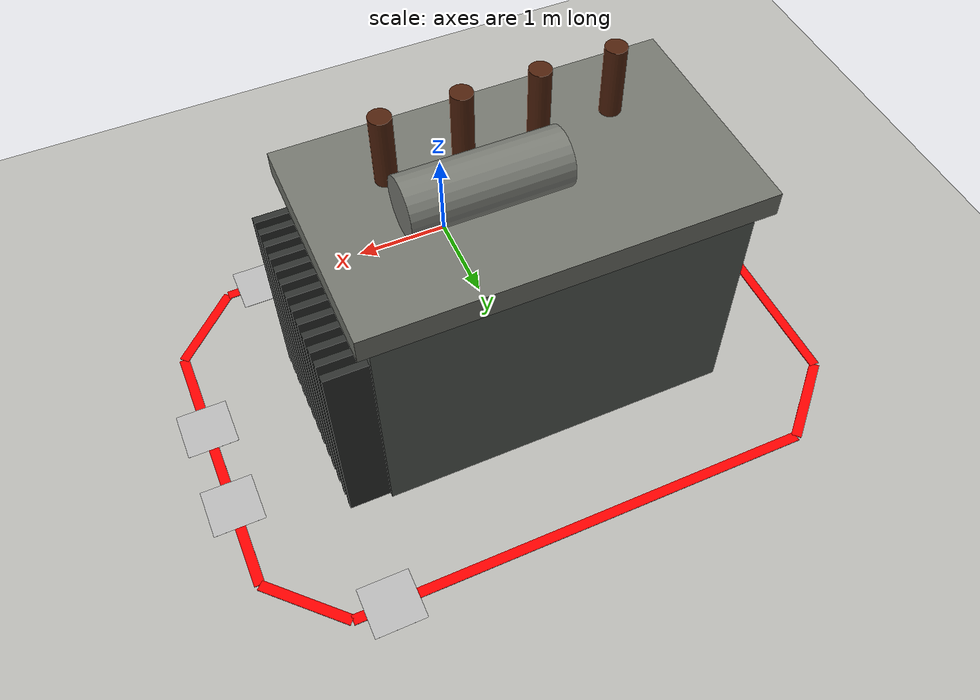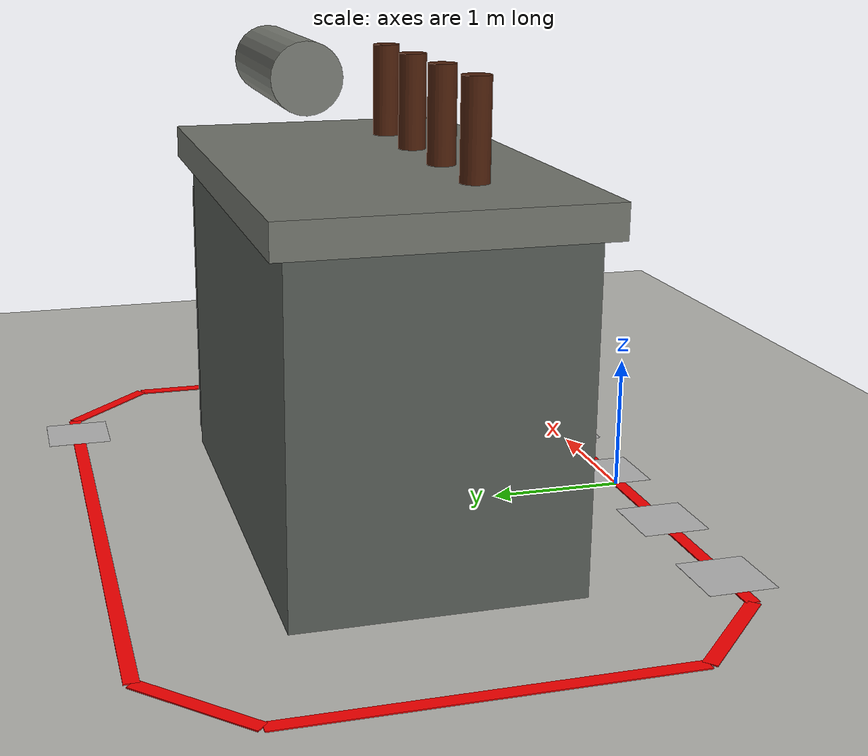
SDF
<sdf version="1.7">
 <world name="transformer_world">
  <gravity>0 0 -9.81</gravity>
  <physics name="ode_physics" type="ode">
   <real_time_update_rate>1000</real_time_update_rate>
   <max_step_size>0.001</max_step_size>
   <real_time_factor>1.0</real_time_factor>
  </physics>
  <scene>
   <shadows>true</shadows>
   <ambient>0.65 0.65 0.65 1</ambient>
   <background>0.85 0.85 0.85 1</background>
  </scene>
  <light name="sun" type="directional">
   <pose>0 0 10 0 0 0</pose>
   <diffuse>0.95 0.95 0.95 1</diffuse>
   <direction>-0.4 0.2 -1</direction>
  </light>
  <model name="ground_plane">
   <static>true</static>
   <link name="link">
    <collision name="collision">
     <geometry><plane><normal>0 0 1</normal><size>20.0 16.0</size></plane></geometry>
    </collision>
    <visual name="visual">
     <cast_shadows>false</cast_shadows>
     <geometry><plane><normal>0 0 1</normal><size>20.0 16.0</size></plane></geometry>
     <material><ambient>0.72 0.72 0.70 1</ambient><diffuse>0.72 0.72 0.70 1</diffuse></material>
    </visual>
   </link>
  </model>
  <model name="transformer_tank">
   <static>true</static>
   <pose>0.00000 1.98000 1.20000 0 0 0</pose>
   <link name="link">
    <collision name="collision"><geometry><box><size>3.50000 2.00000 2.40000</size></box></geometry></collision>
    <visual name="visual">
     <geometry><box><size>3.50000 2.00000 2.40000</size></box></geometry>
     <material><ambient>0.34 0.36 0.34 1</ambient><diffuse>0.34 0.36 0.34 1</diffuse></material>
    </visual>
   </link>
  </model>
  <model name="transformer_lid">
   <static>true</static>
   <pose>0.00000 1.98000 2.52000 0 0 0</pose>
   <link name="link">
    <collision name="collision"><geometry><box><size>3.74500 2.20000 0.24000</size></box></geometry></collision>
    <visual name="visual">
     <geometry><box><size>3.74500 2.20000 0.24000</size></box></geometry>
     <material><ambient>0.45 0.46 0.43 1</ambient><diffuse>0.45 0.46 0.43 1</diffuse></material>
    </visual>
   </link>
  </model>
  <model name="radiator_fin_00">
   <static>true</static>
   <pose>1.95000 1.06000 1.05000 0 0 0</pose>
   <link name="link">
    <collision name="collision"><geometry><box><size>0.40000 0.07000 2.10000</size></box></geometry></collision>
    <visual name="visual">
     <geometry><box><size>0.40000 0.07000 2.10000</size></box></geometry>
     <material><ambient>0.18 0.19 0.18 1</ambient><diffuse>0.18 0.19 0.18 1</diffuse></material>
    </visual>
   </link>
  </model>
  <model name="radiator_fin_01">
   <static>true</static>
   <pose>1.95000 1.21333 1.05000 0 0 0</pose>
   <link name="link">
    <collision name="collision"><geometry><box><size>0.40000 0.07000 2.10000</size></box></geometry></collision>
    <visual name="visual">
     <geometry><box><size>0.40000 0.07000 2.10000</size></box></geometry>
     <material><ambient>0.18 0.19 0.18 1</ambient><diffuse>0.18 0.19 0.18 1</diffuse></material>
    </visual>
   </link>
  </model>
  <model name="radiator_fin_02">
   <static>true</static>
   <pose>1.95000 1.36667 1.05000 0 0 0</pose>
   <link name="link">
    <collision name="collision"><geometry><box><size>0.40000 0.07000 2.10000</size></box></geometry></collision>
    <visual name="visual">
     <geometry><box><size>0.40000 0.07000 2.10000</size></box></geometry>
     <material><ambient>0.18 0.19 0.18 1</ambient><diffuse>0.18 0.19 0.18 1</diffuse></material>
    </visual>
   </link>
  </model>
  <model name="radiator_fin_03">
   <static>true</static>
   <pose>1.95000 1.52000 1.05000 0 0 0</pose>
   <link name="link">
    <collision name="collision"><geometry><box><size>0.40000 0.07000 2.10000</size></box></geometry></collision>
    <visual name="visual">
     <geometry><box><size>0.40000 0.07000 2.10000</size></box></geometry>
     <material><ambient>0.18 0.19 0.18 1</ambient><diffuse>0.18 0.19 0.18 1</diffuse></material>
    </visual>
   </link>
  </model>
  <model name="radiator_fin_04">
   <static>true</static>
   <pose>1.95000 1.67333 1.05000 0 0 0</pose>
   <link name="link">
    <collision name="collision"><geometry><box><size>0.40000 0.07000 2.10000</size></box></geometry></collision>
    <visual name="visual">
     <geometry><box><size>0.40000 0.07000 2.10000</size></box></geometry>
     <material><ambient>0.18 0.19 0.18 1</ambient><diffuse>0.18 0.19 0.18 1</diffuse></material>
    </visual>
   </link>
  </model>
  <model name="radiator_fin_05">
   <static>true</static>
   <pose>1.95000 1.82667 1.05000 0 0 0</pose>
   <link name="link">
    <collision name="collision"><geometry><box><size>0.40000 0.07000 2.10000</size></box></geometry></collision>
    <visual name="visual">
     <geometry><box><size>0.40000 0.07000 2.10000</size></box></geometry>
     <material><ambient>0.18 0.19 0.18 1</ambient><diffuse>0.18 0.19 0.18 1</diffuse></material>
    </visual>
   </link>
  </model>
  <model name="radiator_fin_06">
   <static>true</static>
   <pose>1.95000 1.98000 1.05000 0 0 0</pose>
   <link name="link">
    <collision name="collision"><geometry><box><size>0.40000 0.07000 2.10000</size></box></geometry></collision>
    <visual name="visual">
     <geometry><box><size>0.40000 0.07000 2.10000</size></box></geometry>
     <material><ambient>0.18 0.19 0.18 1</ambient><diffuse>0.18 0.19 0.18 1</diffuse></material>
    </visual>
   </link>
  </model>
  <model name="radiator_fin_07">
   <static>true</static>
   <pose>1.95000 2.13333 1.05000 0 0 0</pose>
   <link name="link">
    <collision name="collision"><geometry><box><size>0.40000 0.07000 2.10000</size></box></geometry></collision>
    <visual name="visual">
     <geometry><box><size>0.40000 0.07000 2.10000</size></box></geometry>
     <material><ambient>0.18 0.19 0.18 1</ambient><diffuse>0.18 0.19 0.18 1</diffuse></material>
    </visual>
   </link>
  </model>
  <model name="radiator_fin_08">
   <static>true</static>
   <pose>1.95000 2.28667 1.05000 0 0 0</pose>
   <link name="link">
    <collision name="collision"><geometry><box><size>0.40000 0.07000 2.10000</size></box></geometry></collision>
    <visual name="visual">
     <geometry><box><size>0.40000 0.07000 2.10000</size></box></geometry>
     <material><ambient>0.18 0.19 0.18 1</ambient><diffuse>0.18 0.19 0.18 1</diffuse></material>
    </visual>
   </link>
  </model>
  <model name="radiator_fin_09">
   <static>true</static>
   <pose>1.95000 2.44000 1.05000 0 0 0</pose>
   <link name="link">
    <collision name="collision"><geometry><box><size>0.40000 0.07000 2.10000</size></box></geometry></collision>
    <visual name="visual">
     <geometry><box><size>0.40000 0.07000 2.10000</size></box></geometry>
     <material><ambient>0.18 0.19 0.18 1</ambient><diffuse>0.18 0.19 0.18 1</diffuse></material>
    </visual>
   </link>
  </model>
  <model name="radiator_fin_10">
   <static>true</static>
   <pose>1.95000 2.59333 1.05000 0 0 0</pose>
   <link name="link">
    <collision name="collision"><geometry><box><size>0.40000 0.07000 2.10000</size></box></geometry></collision>
    <visual name="visual">
     <geometry><box><size>0.40000 0.07000 2.10000</size></box></geometry>
     <material><ambient>0.18 0.19 0.18 1</ambient><diffuse>0.18 0.19 0.18 1</diffuse></material>
    </visual>
   </link>
  </model>
  <model name="radiator_fin_11">
   <static>true</static>
   <pose>1.95000 2.74667 1.05000 0 0 0</pose>
   <link name="link">
    <collision name="collision"><geometry><box><size>0.40000 0.07000 2.10000</size></box></geometry></collision>
    <visual name="visual">
     <geometry><box><size>0.40000 0.07000 2.10000</size></box></geometry>
     <material><ambient>0.18 0.19 0.18 1</ambient><diffuse>0.18 0.19 0.18 1</diffuse></material>
    </visual>
   </link>
  </model>
  <model name="radiator_fin_12">
   <static>true</static>
   <pose>1.95000 2.90000 1.05000 0 0 0</pose>
   <link name="link">
    <collision name="collision"><geometry><box><size>0.40000 0.07000 2.10000</size></box></geometry></collision>
    <visual name="visual">
     <geometry><box><size>0.40000 0.07000 2.10000</size></box></geometry>
     <material><ambient>0.18 0.19 0.18 1</ambient><diffuse>0.18 0.19 0.18 1</diffuse></material>
    </visual>
   </link>
  </model>
  <model name="bushing_0">
   <static>true</static>
   <pose>-1.05000 1.58000 2.95000 0 0.000000 0</pose>
   <link name="link">
    <collision name="collision">
     <geometry><cylinder><radius>0.10000</radius><length>0.75000</length></cylinder></geometry>
    </collision>
    <visual name="visual">
     <geometry><cylinder><radius>0.10000</radius><length>0.75000</length></cylinder></geometry>
     <material><ambient>0.31 0.13 0.05 1</ambient><diffuse>0.31 0.13 0.05 1</diffuse></material>
    </visual>
   </link>
  </model>
  <model name="bushing_1">
   <static>true</static>
   <pose>-0.35000 1.58000 2.95000 0 0.000000 0</pose>
   <link name="link">
    <collision name="collision">
     <geometry><cylinder><radius>0.10000</radius><length>0.75000</length></cylinder></geometry>
    </collision>
    <visual name="visual">
     <geometry><cylinder><radius>0.10000</radius><length>0.75000</length></cylinder></geometry>
     <material><ambient>0.31 0.13 0.05 1</ambient><diffuse>0.31 0.13 0.05 1</diffuse></material>
    </visual>
   </link>
  </model>
  <model name="bushing_2">
   <static>true</static>
   <pose>0.35000 1.58000 2.95000 0 0.000000 0</pose>
   <link name="link">
    <collision name="collision">
     <geometry><cylinder><radius>0.10000</radius><length>0.75000</length></cylinder></geometry>
    </collision>
    <visual name="visual">
     <geometry><cylinder><radius>0.10000</radius><length>0.75000</length></cylinder></geometry>
     <material><ambient>0.31 0.13 0.05 1</ambient><diffuse>0.31 0.13 0.05 1</diffuse></material>
    </visual>
   </link>
  </model>
  <model name="bushing_3">
   <static>true</static>
   <pose>1.05000 1.58000 2.95000 0 0.000000 0</pose>
   <link name="link">
    <collision name="collision">
     <geometry><cylinder><radius>0.10000</radius><length>0.75000</length></cylinder></geometry>
    </collision>
    <visual name="visual">
     <geometry><cylinder><radius>0.10000</radius><length>0.75000</length></cylinder></geometry>
     <material><ambient>0.31 0.13 0.05 1</ambient><diffuse>0.31 0.13 0.05 1</diffuse></material>
    </visual>
   </link>
  </model>
  <model name="conservator">
   <static>true</static>
   <pose>0.55000 2.46000 3.22000 0 1.570796 0</pose>
   <link name="link">
    <collision name="collision">
     <geometry><cylinder><radius>0.25000</radius><length>1.35000</length></cylinder></geometry>
    </collision>
    <visual name="visual">
     <geometry><cylinder><radius>0.25000</radius><length>1.35000</length></cylinder></geometry>
     <material><ambient>0.48 0.49 0.46 1</ambient><diffuse>0.48 0.49 0.46 1</diffuse></material>
    </visual>
   </link>
  </model>
  <model name="inspection_path_0">
   <static>true</static>
   <pose>0.20000 -0.02000 0.00400 0 0 0.000000</pose>
   <link name="link">
    <visual name="visual">
     <cast_shadows>false</cast_shadows>
     <geometry><box><size>4.60000 0.10000 0.00800</size></box></geometry>
     <material><ambient>1 0 0 1</ambient><diffuse>1 0 0 1</diffuse><emissive>1 0 0 1</emissive></material>
    </visual>
   </link>
  </model>
  <model name="inspection_path_1">
   <static>true</static>
   <pose>2.82500 0.30500 0.00400 0 0 0.785398</pose>
   <link name="link">
    <visual name="visual">
     <cast_shadows>false</cast_shadows>
     <geometry><box><size>0.91924 0.10000 0.00800</size></box></geometry>
     <material><ambient>1 0 0 1</ambient><diffuse>1 0 0 1</diffuse><emissive>1 0 0 1</emissive></material>
    </visual>
   </link>
  </model>
  <model name="inspection_path_2">
   <static>true</static>
   <pose>3.15000 1.98000 0.00400 0 0 1.570796</pose>
   <link name="link">
    <visual name="visual">
     <cast_shadows>false</cast_shadows>
     <geometry><box><size>2.70000 0.10000 0.00800</size></box></geometry>
     <material><ambient>1 0 0 1</ambient><diffuse>1 0 0 1</diffuse><emissive>1 0 0 1</emissive></material>
    </visual>
   </link>
  </model>
  <model name="inspection_path_3">
   <static>true</static>
   <pose>2.82500 3.65500 0.00400 0 0 2.356194</pose>
   <link name="link">
    <visual name="visual">
     <cast_shadows>false</cast_shadows>
     <geometry><box><size>0.91924 0.10000 0.00800</size></box></geometry>
     <material><ambient>1 0 0 1</ambient><diffuse>1 0 0 1</diffuse><emissive>1 0 0 1</emissive></material>
    </visual>
   </link>
  </model>
  <model name="inspection_path_4">
   <static>true</static>
   <pose>0.20000 3.98000 0.00400 0 0 3.141593</pose>
   <link name="link">
    <visual name="visual">
     <cast_shadows>false</cast_shadows>
     <geometry><box><size>4.60000 0.10000 0.00800</size></box></geometry>
     <material><ambient>1 0 0 1</ambient><diffuse>1 0 0 1</diffuse><emissive>1 0 0 1</emissive></material>
    </visual>
   </link>
  </model>
  <model name="inspection_path_5">
   <static>true</static>
   <pose>-2.42500 3.65500 0.00400 0 0 -2.356194</pose>
   <link name="link">
    <visual name="visual">
     <cast_shadows>false</cast_shadows>
     <geometry><box><size>0.91924 0.10000 0.00800</size></box></geometry>
     <material><ambient>1 0 0 1</ambient><diffuse>1 0 0 1</diffuse><emissive>1 0 0 1</emissive></material>
    </visual>
   </link>
  </model>
  <model name="inspection_path_6">
   <static>true</static>
   <pose>-2.75000 1.98000 0.00400 0 0 -1.570796</pose>
   <link name="link">
    <visual name="visual">
     <cast_shadows>false</cast_shadows>
     <geometry><box><size>2.70000 0.10000 0.00800</size></box></geometry>
     <material><ambient>1 0 0 1</ambient><diffuse>1 0 0 1</diffuse><emissive>1 0 0 1</emissive></material>
    </visual>
   </link>
  </model>
  <model name="inspection_path_7">
   <static>true</static>
   <pose>-2.42500 0.30500 0.00400 0 0 -0.785398</pose>
   <link name="link">
    <visual name="visual">
     <cast_shadows>false</cast_shadows>
     <geometry><box><size>0.91924 0.10000 0.00800</size></box></geometry>
     <material><ambient>1 0 0 1</ambient><diffuse>1 0 0 1</diffuse><emissive>1 0 0 1</emissive></material>
    </visual>
   </link>
  </model>
  <include>
   <uri>model://aruco_floor_00</uri>
   <name>aruco_floor_00</name>
   <pose>-1.73200 -0.02000 0.01800 0 0 1.570796</pose>
  </include>
  <include>
   <uri>model://aruco_floor_01</uri>
   <name>aruco_floor_01</name>
   <pose>-0.76600 -0.02000 0.01800 0 0 1.570796</pose>
  </include>
  <include>
   <uri>model://aruco_floor_02</uri>
   <name>aruco_floor_02</name>
   <pose>0.20000 -0.02000 0.01800 0 0 1.570796</pose>
  </include>
  <include>
   <uri>model://aruco_floor_03</uri>
   <name>aruco_floor_03</name>
   <pose>1.16600 -0.02000 0.01800 0 0 1.570796</pose>
  </include>
  <include>
   <uri>model://aruco_floor_04</uri>
   <name>aruco_floor_04</name>
   <pose>2.13200 -0.02000 0.01800 0 0 1.570796</pose>
  </include>
  <include>
   <uri>model://aruco_floor_05</uri>
   <name>aruco_floor_05</name>
   <pose>3.15000 1.54800 0.01800 0 0 3.141593</pose>
  </include>
  <include>
   <uri>model://aruco_floor_06</uri>
   <name>aruco_floor_06</name>
   <pose>3.15000 2.46600 0.01800 0 0 3.141593</pose>
  </include>
  <include>
   <uri>model://aruco_floor_07</uri>
   <name>aruco_floor_07</name>
   <pose>2.13200 3.98000 0.01800 0 0 4.712389</pose>
  </include>
 </world>
</sdf>

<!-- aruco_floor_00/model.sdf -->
<sdf version="1.6">
  <model name="aruco_floor_00">
    <static>true</static>
    <link name="link">
      <visual name="aruco_visual">
        <pose>0 0 0.005 0 0 0</pose>
        <geometry>
          <plane>
            <normal>0 0 1</normal>
            <size>0.5 0.5</size>
          </plane>
        </geometry>
        <material>
          <script>
            <uri>model://aruco_floor_00/materials/scripts</uri>
            <uri>model://aruco_floor_00/materials/textures</uri>
            <name>ArUco/Floor00</name>
          </script>
        </material>
      </visual>
    </link>
  </model>
</sdf>

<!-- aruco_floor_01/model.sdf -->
<sdf version="1.6">
  <model name="aruco_floor_01">
    <static>true</static>
    <link name="link">
      <visual name="aruco_visual">
        <pose>0 0 0.005 0 0 0</pose>
        <geometry>
          <plane>
            <normal>0 0 1</normal>
            <size>0.5 0.5</size>
          </plane>
        </geometry>
        <material>
          <script>
            <uri>model://aruco_floor_01/materials/scripts</uri>
            <uri>model://aruco_floor_01/materials/textures</uri>
            <name>ArUco/Floor01</name>
          </script>
        </material>
      </visual>
    </link>
  </model>
</sdf>

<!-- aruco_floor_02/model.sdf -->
<sdf version="1.6">
  <model name="aruco_floor_02">
    <static>true</static>
    <link name="link">
      <visual name="aruco_visual">
        <pose>0 0 0.005 0 0 0</pose>
        <geometry>
          <plane>
            <normal>0 0 1</normal>
            <size>0.5 0.5</size>
          </plane>
        </geometry>
        <material>
          <script>
            <uri>model://aruco_floor_02/materials/scripts</uri>
            <uri>model://aruco_floor_02/materials/textures</uri>
            <name>ArUco/Floor02</name>
          </script>
        </material>
      </visual>
    </link>
  </model>
</sdf>

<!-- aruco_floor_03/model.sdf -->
<sdf version="1.6">
  <model name="aruco_floor_03">
    <static>true</static>
    <link name="link">
      <visual name="aruco_visual">
        <pose>0 0 0.005 0 0 0</pose>
        <geometry>
          <plane>
            <normal>0 0 1</normal>
            <size>0.5 0.5</size>
          </plane>
        </geometry>
        <material>
          <script>
            <uri>model://aruco_floor_03/materials/scripts</uri>
            <uri>model://aruco_floor_03/materials/textures</uri>
            <name>ArUco/Floor03</name>
          </script>
        </material>
      </visual>
    </link>
  </model>
</sdf>

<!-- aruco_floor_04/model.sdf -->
<sdf version="1.6">
  <model name="aruco_floor_04">
    <static>true</static>
    <link name="link">
      <visual name="aruco_visual">
        <pose>0 0 0.005 0 0 0</pose>
        <geometry>
          <plane>
            <normal>0 0 1</normal>
            <size>0.5 0.5</size>
          </plane>
        </geometry>
        <material>
          <script>
            <uri>model://aruco_floor_04/materials/scripts</uri>
            <uri>model://aruco_floor_04/materials/textures</uri>
            <name>ArUco/Floor04</name>
          </script>
        </material>
      </visual>
    </link>
  </model>
</sdf>

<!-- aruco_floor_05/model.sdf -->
<sdf version="1.6">
  <model name="aruco_floor_05">
    <static>true</static>
    <link name="link">
      <visual name="aruco_visual">
        <pose>0 0 0.005 0 0 0</pose>
        <geometry>
          <plane>
            <normal>0 0 1</normal>
            <size>0.5 0.5</size>
          </plane>
        </geometry>
        <material>
          <script>
            <uri>model://aruco_floor_05/materials/scripts</uri>
            <uri>model://aruco_floor_05/materials/textures</uri>
            <name>ArUco/Floor05</name>
          </script>
        </material>
      </visual>
    </link>
  </model>
</sdf>

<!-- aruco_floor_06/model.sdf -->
<sdf version="1.6">
  <model name="aruco_floor_06">
    <static>true</static>
    <link name="link">
      <visual name="aruco_visual">
        <pose>0 0 0.005 0 0 0</pose>
        <geometry>
          <plane>
            <normal>0 0 1</normal>
            <size>0.5 0.5</size>
          </plane>
        </geometry>
        <material>
          <script>
            <uri>model://aruco_floor_06/materials/scripts</uri>
            <uri>model://aruco_floor_06/materials/textures</uri>
            <name>ArUco/Floor06</name>
          </script>
        </material>
      </visual>
    </link>
  </model>
</sdf>

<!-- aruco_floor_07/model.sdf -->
<sdf version="1.6">
  <model name="aruco_floor_07">
    <static>true</static>
    <link name="link">
      <visual name="aruco_visual">
        <pose>0 0 0.005 0 0 0</pose>
        <geometry>
          <plane>
            <normal>0 0 1</normal>
            <size>0.5 0.5</size>
          </plane>
        </geometry>
        <material>
          <script>
            <uri>model://aruco_floor_07/materials/scripts</uri>
            <uri>model://aruco_floor_07/materials/textures</uri>
            <name>ArUco/Floor07</name>
          </script>
        </material>
      </visual>
    </link>
  </model>
</sdf>
